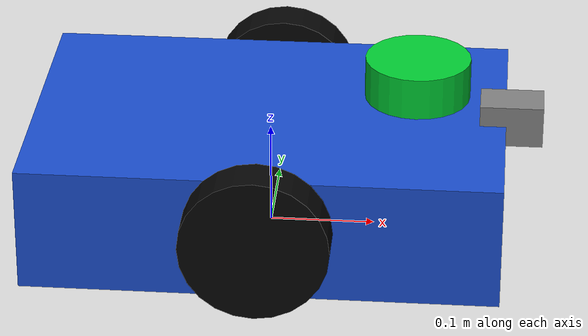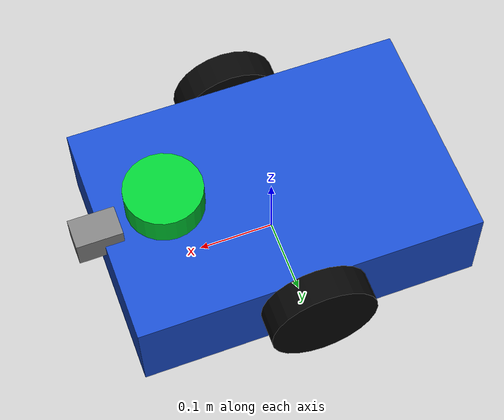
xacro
<?xml version="1.0"?>
<robot xmlns:xacro="http://www.ros.org/wiki/xacro" name="mobile_robot">
  <xacro:property name="base_length" value="0.45"/>
  <xacro:property name="base_width" value="0.30"/>
  <xacro:property name="base_height" value="0.12"/>
  <xacro:property name="wheel_radius" value="0.07"/>
  <xacro:property name="wheel_width" value="0.04"/>

  <link name="base_link">
    <visual>
      <origin xyz="0 0 ${base_height / 2}" rpy="0 0 0"/>
      <geometry>
        <box size="${base_length} ${base_width} ${base_height}"/>
      </geometry>
      <material name="blue">
        <color rgba="0.1 0.3 0.8 1.0"/>
      </material>
    </visual>
  </link>

  <link name="left_wheel_link">
    <visual>
      <origin xyz="0 0 0" rpy="1.5708 0 0"/>
      <geometry>
        <cylinder radius="${wheel_radius}" length="${wheel_width}"/>
      </geometry>
      <material name="black">
        <color rgba="0.02 0.02 0.02 1.0"/>
      </material>
    </visual>
  </link>

  <link name="right_wheel_link">
    <visual>
      <origin xyz="0 0 0" rpy="1.5708 0 0"/>
      <geometry>
        <cylinder radius="${wheel_radius}" length="${wheel_width}"/>
      </geometry>
      <material name="black"/>
    </visual>
  </link>

  <joint name="left_wheel_joint" type="continuous">
    <parent link="base_link"/>
    <child link="left_wheel_link"/>
    <origin xyz="0 ${base_width / 2 + wheel_width / 2} ${wheel_radius}" rpy="0 0 0"/>
    <axis xyz="0 1 0"/>
  </joint>

  <joint name="right_wheel_joint" type="continuous">
    <parent link="base_link"/>
    <child link="right_wheel_link"/>
    <origin xyz="0 -${base_width / 2 + wheel_width / 2} ${wheel_radius}" rpy="0 0 0"/>
    <axis xyz="0 1 0"/>
  </joint>

  <link name="laser_link">
    <visual>
      <origin xyz="0 0 0" rpy="0 0 0"/>
      <geometry>
        <cylinder radius="0.05" length="0.04"/>
      </geometry>
      <material name="green">
        <color rgba="0.0 0.8 0.2 1.0"/>
      </material>
    </visual>
  </link>

  <joint name="laser_joint" type="fixed">
    <parent link="base_link"/>
    <child link="laser_link"/>
    <origin xyz="0.14 0 ${base_height + 0.04}" rpy="0 0 0"/>
  </joint>

  <link name="camera_link">
    <visual>
      <origin xyz="0 0 0" rpy="0 0 0"/>
      <geometry>
        <box size="0.06 0.04 0.04"/>
      </geometry>
      <material name="gray">
        <color rgba="0.5 0.5 0.5 1.0"/>
      </material>
    </visual>
  </link>

  <joint name="camera_joint" type="fixed">
    <parent link="base_link"/>
    <child link="camera_link"/>
    <origin xyz="0.23 0 ${base_height}" rpy="0 0 0"/>
  </joint>
</robot>
